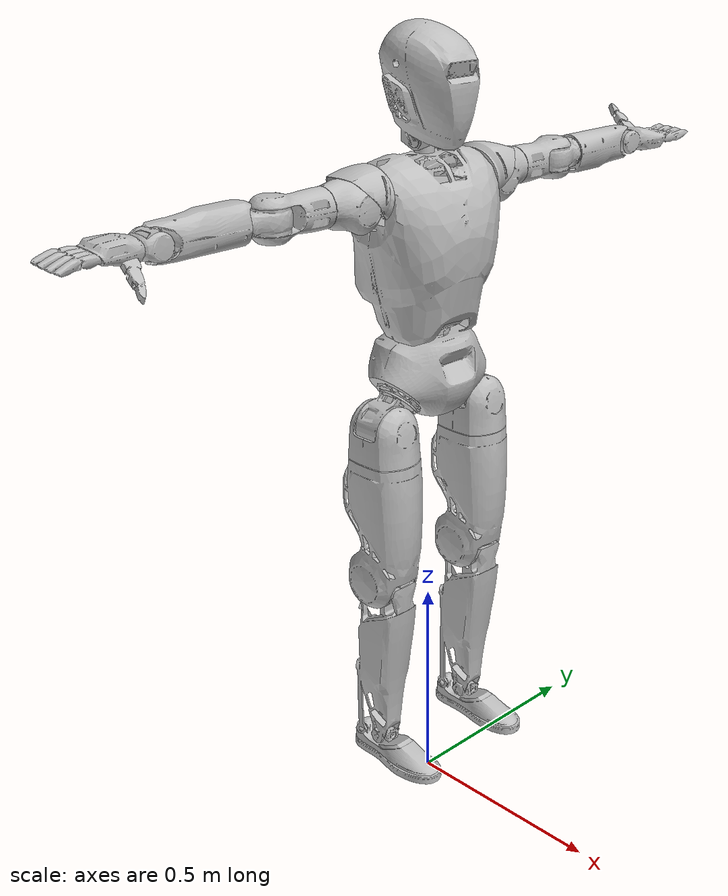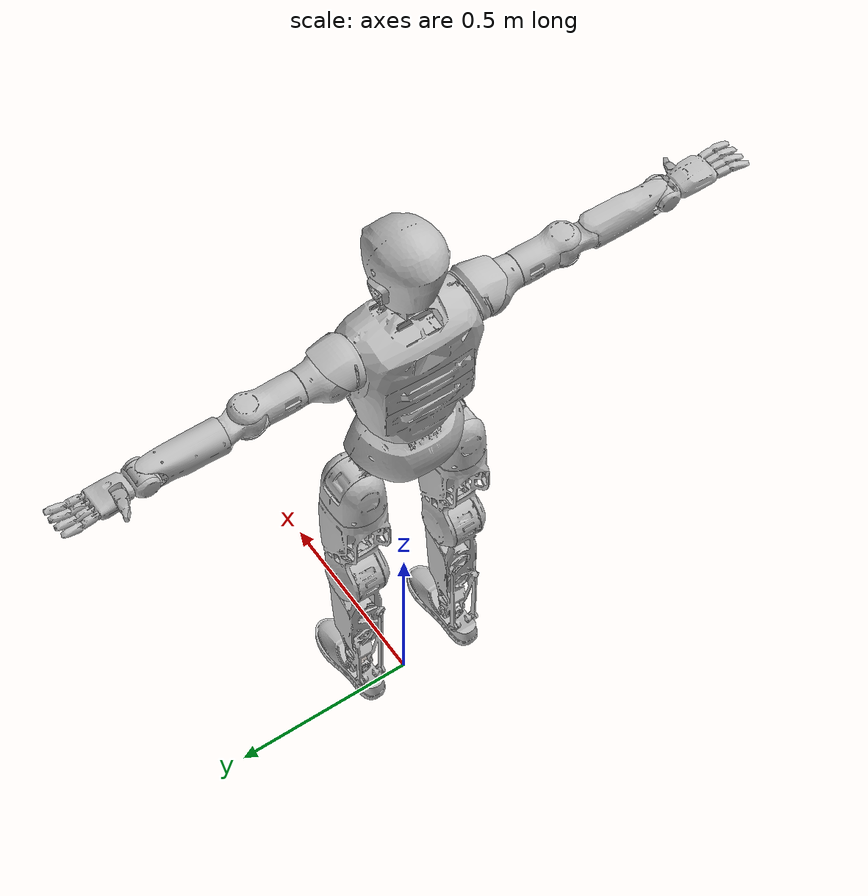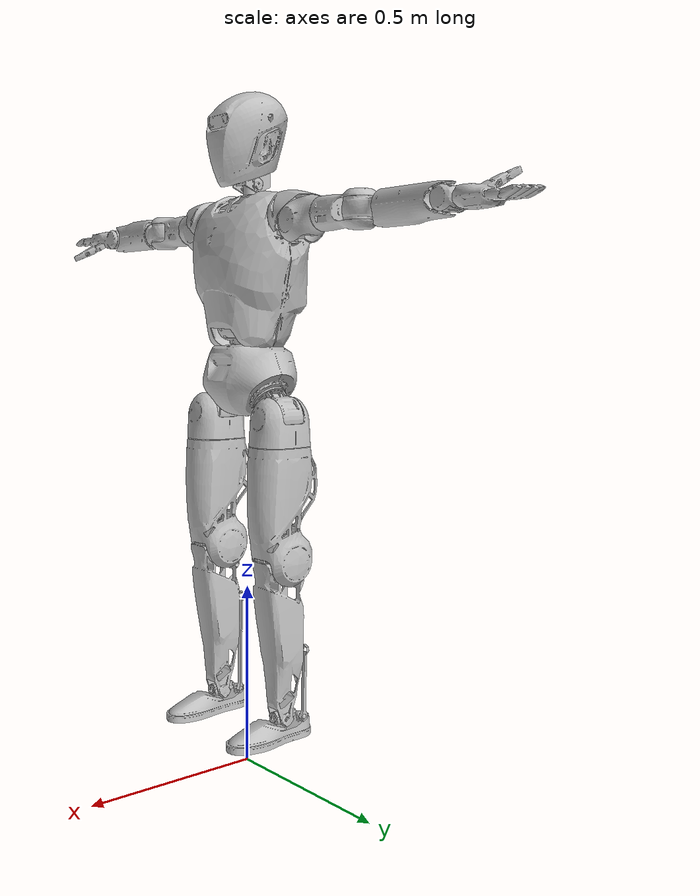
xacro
<?xml version="1.0"?>

<robot xmlns:xacro="http://www.ros.org/wiki/xacro" name="moga">

    <xacro:arg name="robot_type" default="moga" />

  <xacro:include filename="$(find legged_moga_description)/urdf/common/gazebo.xacro" />
  <xacro:include filename="$(find legged_moga_description)/urdf/common/imu.xacro" />
  <xacro:property name="mesh_path" value="file://$(find legged_moga_description)/meshes" />
  <xacro:IMU connected_to="base_link" imu_name="imu_link" xyz="0. 0. 0." rpy="0. 0. 0." />

  <!-- [CAUTION] uncomment when convert to mujoco -->
    <link name="world"/>
    <joint name="world_to_base" type="fixed">
      <parent link="world"/>
      <child link="base_link"/>
      <!-- 把 base_link 固定在离地 1m 高的位置 -->
      <origin xyz="0 0 1"/>
    </joint>

  <link name="base_link">
    <inertial>
      <origin
        xyz="-0.0017221 9.9273E-06 0.078502"
        rpy="0 0 0" />
      <mass
        value="8.80559204" />
      <inertia
        ixx="0.06505901"
        ixy="-0.00001504"
        ixz="0.00007043"
        iyy="0.03392367"
        iyz="-0.00000057"
        izz="0.06060049" />
    </inertial>
    <visual>
      <origin
        xyz="0 0 0"
        rpy="0 0 0" />
      <geometry>
        <mesh
          filename="${mesh_path}/base_link.STL" />
      </geometry>
      <material
        name="">
        <color
          rgba="0.75294 0.75294 0.75294 1" />
      </material>
    </visual>
  </link>
  <link
    name="0waist_yaw_link">
    <inertial>
      <origin
        xyz="0.02077 0.002139 0.044432"
        rpy="0 0 0" />
      <mass
        value="1.35227213" />
      <inertia
        ixx="0.00145099"
        ixy="0.00001293"
        ixz="-0.0002088"
        iyy="0.00155537"
        iyz="0.00001574"
        izz="0.00144129" />
    </inertial>
    <visual>
      <origin
        xyz="0 0 0"
        rpy="0 0 0" />
      <geometry>
        <mesh
          filename="${mesh_path}/waist_yaw.STL" />
      </geometry>
      <material
        name="">
        <color
          rgba="0.75294 0.75294 0.75294 1" />
      </material>
    </visual>
  </link>
  <joint
    name="0waist_yaw"
    type="revolute">
    <origin
      xyz="0.0010247 0 0.16995"
      rpy="0 0 0" />
    <parent
      link="base_link" />
    <child
      link="0waist_yaw_link" />
    <axis
      xyz="0 0 1" />
    <limit
      damping="1.0"
      friction="2.0"
      lower="-3.14"
      upper="3.14"
      effort="90"
      velocity="12.56" />
  </joint>
  <link
    name="waist_pitch_link">
    <inertial>
      <origin
        xyz="-0.0384853936557413 0.0017960963283048 0.164731708770369"
        rpy="0 0 0" />
      <mass
        value="10.28228466" />
      <inertia
        ixx="0.19115274"
        ixy="-0.00014699"
        ixz="-0.00225152"
        iyy="0.11520537"
        iyz="0.00151447"
        izz="0.13908471" />
    </inertial>
    <visual>
      <origin
        xyz="0 0 0"
        rpy="0 0 0" />
      <geometry>
        <mesh
          filename="${mesh_path}/waist_pitch.STL" />
      </geometry>
      <material
        name="">
        <color
          rgba="0.752941176470588 0.752941176470588 0.752941176470588 1" />
      </material>
    </visual>
  </link>
  <joint
    name="waist_pitch"
    type="revolute">
    <origin
      xyz="0.03 0 0.0555"
      rpy="0 0 0" />
    <parent
      link="0waist_yaw_link" />
    <child
      link="waist_pitch_link" />
    <axis
      xyz="0 1 0" />
    <limit
      damping="1.0"
      friction="2.0"
      lower="0"
      upper="1.046"
      effort="90"
      velocity="12.56" />
  </joint>
  <link
    name="1left_shoulder_pitch_link">
    <inertial>
      <origin
        xyz="0.011253 0.034606 0.0013962"
        rpy="0 0 0" />
      <mass
        value="1.24676052" />
      <inertia
        ixx="0.00150509"
        ixy="-0.00005887"
        ixz="0.00007608"
        iyy="0.00147738"
        iyz="0.00009631"
        izz="0.00135553" />
    </inertial>
    <visual>
      <origin
        xyz="0 0 0"
        rpy="0 0 0" />
      <geometry>
        <mesh
          filename="${mesh_path}/left_shoulder_pitch.STL" />
      </geometry>
      <material
        name="">
        <color
          rgba="0.75294 0.75294 0.75294 1" />
      </material>
    </visual>
  </link>
  <joint
    name="1left_shoulder_pitch"
    type="revolute">
    <origin
      xyz="-0.045 0.16306 0.26719"
      rpy="0.13963 0 0" />
    <parent
      link="waist_pitch_link" />
    <child
      link="1left_shoulder_pitch_link" />
    <axis
      xyz="0 1 0" />
    <limit
      damping="1.0"
      friction="2.0"
      lower="-3.14"
      upper="3.14"
      effort="90"
      velocity="3.12" />
  </joint>
  <link
    name="1left_shoulder_roll_link">
    <inertial>
      <origin
        xyz="0.0068529 0.02305 0.0095938"
        rpy="0 0 0" />
      <mass
        value="0.24916820" />
      <inertia
        ixx="0.00054423"
        ixy="0.00004049"
        ixz="0.00001947"
        iyy="0.00059850"
        iyz="-0.00003069"
        izz="0.00069187" />
    </inertial>
    <visual>
      <origin
        xyz="0 0 0"
        rpy="0 0 0" />
      <geometry>
        <mesh
          filename="${mesh_path}/left_shoulder_roll.STL" />
      </geometry>
      <material
        name="">
        <color
          rgba="0.75294 0.75294 0.75294 1" />
      </material>
    </visual>
  </link>
  <joint
    name="1left_shoulder_roll"
    type="revolute">
    <origin
      xyz="0 0.048 -0.015"
      rpy="-0.13963 0 0" />
    <parent
      link="1left_shoulder_pitch_link" />
    <child
      link="1left_shoulder_roll_link" />
    <axis
      xyz="1 0 0" />
    <limit
      damping="1.0"
      friction="2.0"
      lower="-1.57"
      upper="1.04"
      effort="90"
      velocity="3.12" />
  </joint>
  <link
    name="left_shoulder_yaw_link">
    <inertial>
      <origin
        xyz="-0.00050778 0.064908 0.0015998"
        rpy="0 0 0" />
      <mass
        value="0.91467672" />
      <inertia
        ixx="0.00191070"
        ixy="0.00001224"
        ixz="-0.00000012"
        iyy="0.00091729"
        iyz="-0.00004757"
        izz="0.00184017" />
    </inertial>
    <visual>
      <origin
        xyz="0 0 0"
        rpy="0 0 0" />
      <geometry>
        <mesh
          filename="${mesh_path}/left_shoulder_yaw.STL" />
      </geometry>
      <material
        name="">
        <color
          rgba="0.75294 0.75294 0.75294 1" />
      </material>
    </visual>
  </link>
  <joint
    name="left_shoulder_yaw"
    type="revolute">
    <origin
      xyz="0 0.07205 0.01237"
      rpy="0 0 0" />
    <parent
      link="1left_shoulder_roll_link" />
    <child
      link="left_shoulder_yaw_link" />
    <axis
      xyz="0 1 0" />
    <limit
      damping="1.0"
      friction="2.0"
      lower="-3.14"
      upper="3.14"
      effort="48"
      velocity="3.12" />
  </joint>
  <link
    name="1left_elbow_pitch_link">
    <inertial>
      <origin
        xyz="-0.0013804 0.014214 -0.0011072"
        rpy="0 0 0" />
      <mass
        value="0.96823646" />
      <inertia
        ixx="0.00110137"
        ixy="0.00002929"
        ixz="-0.00000334"
        iyy="0.00089963"
        iyz="0.00003570"
        izz="0.00109827" />
    </inertial>
    <visual>
      <origin
        xyz="0 0 0"
        rpy="0 0 0" />
      <geometry>
        <mesh
          filename="${mesh_path}/left_elbow_pitch.STL" />
      </geometry>
      <material
        name="">
        <color
          rgba="0.75294 0.75294 0.75294 1" />
      </material>
    </visual>
  </link>
  <joint
    name="1left_elbow_pitch"
    type="revolute">
    <origin
      xyz="0 0.142 0"
      rpy="0 0 0" />
    <parent
      link="left_shoulder_yaw_link" />
    <child
      link="1left_elbow_pitch_link" />
    <axis
      xyz="0 0 1" />
    <limit
      damping="1.0"
      friction="2.0"
      lower="-2.09"
      upper="0"
      effort="48"
      velocity="3.12" />
  </joint>
  <link
    name="left_elbow_yaw_link">
    <inertial>
      <origin
        xyz="-4.2404E-06 0.090739 -0.0022072"
        rpy="0 0 0" />
      <mass
        value="1.61695316" />
      <inertia
        ixx="0.00444254"
        ixy="0.00000405"
        ixz="0.00000286"
        iyy="0.00112056"
        iyz="0.00022804"
        izz="0.00428917" />
    </inertial>
    <visual>
      <origin
        xyz="0 0 0"
        rpy="0 0 0" />
      <geometry>
        <mesh
          filename="${mesh_path}/left_elbow_yaw.STL" />
      </geometry>
      <material
        name="">
        <color
          rgba="0.75294 0.75294 0.75294 1" />
      </material>
    </visual>
  </link>
  <joint
    name="left_elbow_yaw"
    type="revolute">
    <origin
      xyz="-0.0081851 0.0684 -5.392E-05"
      rpy="0 0 0" />
    <parent
      link="1left_elbow_pitch_link" />
    <child
      link="left_elbow_yaw_link" />
    <axis
      xyz="0 1 0" />
    <limit
      damping="1.0"
      friction="2.0"
      lower="3.14"
      upper="3.14"
      effort="15"
      velocity="3.12" />
  </joint>
  <link
    name="1left_wrist_pitch_link">
    <inertial>
      <origin
        xyz="0.00847041858689116 0.00453400666111203 -0.000647129716278116"
        rpy="0 0 0" />
      <mass
        value="0.68194696" />
      <inertia
        ixx="0.00031510"
        ixy="0.00000000"
        ixz="-0.00000302"
        iyy="0.00038513"
        iyz="-0.00000011"
        izz="0.00035596" />
    </inertial>
    <visual>
      <origin
        xyz="0 0 0"
        rpy="0 0 0" />
      <geometry>
        <mesh
          filename="${mesh_path}/left_wrist_pitch.STL" />
      </geometry>
      <material
        name="">
        <color
          rgba="0.752941176470588 0.752941176470588 0.752941176470588 1" />
      </material>
    </visual>
  </link>
  <joint
    name="1left_wrist_pitch"
    type="revolute">
    <origin
      xyz="0 0.203 5.392E-05"
      rpy="0 0 0" />
    <parent
      link="left_elbow_yaw_link" />
    <child
      link="1left_wrist_pitch_link" />
    <axis
      xyz="0 0 1" />
    <limit
      damping="1.0"
      friction="2.0"
      lower="-0.348"
      upper="0.348"
      effort="15"
      velocity="3.12" />
  </joint>
  <link
    name="left_wrist_roll_link">
    <inertial>
      <origin
        xyz="-0.0026765098743331 0.0932230814686578 -0.00310005917547751"
        rpy="0 0 0" />
      <mass
        value="0.70000000" />
      <inertia
        ixx="0.00164249"
        ixy="0.00007715"
        ixz="0.00021137"
        iyy="0.00089043"
        iyz="-0.00010543"
        izz="0.00217172" />
    </inertial>
    <visual>
      <origin
        xyz="0 0 0"
        rpy="0 0 0" />
      <geometry>
        <mesh
          filename="${mesh_path}/left_wrist_roll.STL" />
      </geometry>
      <material
        name="">
        <color
          rgba="0.752941176470588 0.752941176470588 0.752941176470588 1" />
      </material>
    </visual>
  </link>
  <joint
    name="left_wrist_roll"
    type="revolute">
    <origin
      xyz="0.0081861 0.005 0.00024608"
      rpy="0 0 0" />
    <parent
      link="1left_wrist_pitch_link" />
    <child
      link="left_wrist_roll_link" />
    <axis
      xyz="1 0 0" />
    <limit
      damping="1.0"
      friction="2.0"
      lower="-0.52"
      upper="0.52"
      effort="15"
      velocity="3.12" />
  </joint>
  <link
    name="1right_shoulder_pitch_link">
    <inertial>
      <origin
        xyz="0.0112521341386398 -0.0345906481596432 0.00140406395538412"
        rpy="0 0 0" />
      <mass
        value="1.24685052" />
      <inertia
        ixx="0.00150547"
        ixy="0.00005893"
        ixz="0.00007617"
        iyy="0.00147760"
        iyz="-0.00009651"
        izz="0.00135577" />
    </inertial>
    <visual>
      <origin
        xyz="0 0 0"
        rpy="0 0 0" />
      <geometry>
        <mesh
          filename="${mesh_path}/right_shoulder_pitch.STL" />
      </geometry>
      <material
        name="">
        <color
          rgba="0.752941176470588 0.752941176470588 0.752941176470588 1" />
      </material>
    </visual>
  </link>
  <joint
    name="1right_shoulder_pitch"
    type="revolute">
    <origin
      xyz="-0.045 -0.16306 0.26719"
      rpy="-0.13963 0 0" />
    <parent
      link="waist_pitch_link" />
    <child
      link="1right_shoulder_pitch_link" />
    <axis
      xyz="0 1 0" />
    <limit
      damping="1.0"
      friction="2.0"
      lower="-3.14"
      upper="3.14"
      effort="90"
      velocity="3.12" />
  </joint>
  <link
    name="1right_shoulder_roll_link">
    <inertial>
      <origin
        xyz="0.00684462181795377 -0.023042827171319 0.00959240613331935"
        rpy="0 0 0" />
      <mass
        value="0.24917773" />
      <inertia
        ixx="0.00055212"
        ixy="-0.00003627"
        ixz="0.00001721"
        iyy="0.00060479"
        iyz="0.00003340"
        izz="0.00070132" />
    </inertial>
    <visual>
      <origin
        xyz="0 0 0"
        rpy="0 0 0" />
      <geometry>
        <mesh
          filename="${mesh_path}/right_shoulder_roll.STL" />
      </geometry>
      <material
        name="">
        <color
          rgba="0.752941176470588 0.752941176470588 0.752941176470588 1" />
      </material>
    </visual>
  </link>
  <joint
    name="1right_shoulder_roll"
    type="revolute">
    <origin
      xyz="0 -0.048 -0.015"
      rpy="0.13963 0 0" />
    <parent
      link="1right_shoulder_pitch_link" />
    <child
      link="1right_shoulder_roll_link" />
    <axis
      xyz="1 0 0" />
    <limit
      damping="1.0"
      friction="2.0"
      lower="-1.04"
      upper="1.57"
      effort="90"
      velocity="3.12" />
  </joint>
  <link
    name="right_shoulder_yaw_link">
    <inertial>
      <origin
        xyz="-0.000506858484631955 -0.0645515552123688 0.00168134263284647"
        rpy="0 0 0" />
      <mass
        value="0.91457840" />
      <inertia
        ixx="0.00189816"
        ixy="-0.00001244"
        ixz="-0.00000038"
        iyy="0.00091718"
        iyz="0.00005251"
        izz="0.00182921" />
    </inertial>
    <visual>
      <origin
        xyz="0 0 0"
        rpy="0 0 0" />
      <geometry>
        <mesh
          filename="${mesh_path}/right_shoulder_yaw.STL" />
      </geometry>
      <material
        name="">
        <color
          rgba="0.752941176470588 0.752941176470588 0.752941176470588 1" />
      </material>
    </visual>
  </link>
  <joint
    name="right_shoulder_yaw"
    type="revolute">
    <origin
      xyz="0 -0.07205 0.01237"
      rpy="0 0 0" />
    <parent
      link="1right_shoulder_roll_link" />
    <child
      link="right_shoulder_yaw_link" />
    <axis
      xyz="0 1 0" />
    <limit
      damping="1.0"
      friction="2.0"
      lower="-3.14"
      upper="3.14"
      effort="48"
      velocity="3.12" />
  </joint>
  <link
    name="1right_elbow_pitch_link">
    <inertial>
      <origin
        xyz="-0.00147698397475442 -0.0138263638011724 -0.000807664369872563"
        rpy="0 0 0" />
      <mass
        value="0.97128107" />
      <inertia
        ixx="0.00110702"
        ixy="-0.00002804"
        ixz="-0.00000244"
        iyy="0.00090197"
        iyz="-0.00003835"
        izz="0.00110252" />
    </inertial>
    <visual>
      <origin
        xyz="0 0 0"
        rpy="0 0 0" />
      <geometry>
        <mesh
          filename="${mesh_path}/right_elbow_pitch.STL" />
      </geometry>
      <material
        name="">
        <color
          rgba="0.752941176470588 0.752941176470588 0.752941176470588 1" />
      </material>
    </visual>
  </link>
  <joint
    name="1right_elbow_pitch"
    type="revolute">
    <origin
      xyz="0 -0.142 0"
      rpy="0 0 0" />
    <parent
      link="right_shoulder_yaw_link" />
    <child
      link="1right_elbow_pitch_link" />
    <axis
      xyz="0 0 1" />
    <limit
      damping="1.0"
      friction="2.0"
      lower="0"
      upper="2.09"
      effort="48"
      velocity="3.12" />
  </joint>
  <link
    name="right_elbow_yaw_link">
    <inertial>
      <origin
        xyz="-8.33407370061032E-06 -0.0907632773291066 -0.00221092912571186"
        rpy="0 0 0" />
      <mass
        value="1.61873767" />
      <inertia
        ixx="0.00446047"
        ixy="-0.00000054"
        ixz="0.00000211"
        iyy="0.00112527"
        iyz="-0.00022522"
        izz="0.00430811" />
    </inertial>
    <visual>
      <origin
        xyz="0 0 0"
        rpy="0 0 0" />
      <geometry>
        <mesh
          filename="${mesh_path}/right_elbow_yaw.STL" />
      </geometry>
      <material
        name="">
        <color
          rgba="0.752941176470588 0.752941176470588 0.752941176470588 1" />
      </material>
    </visual>
  </link>
  <joint
    name="right_elbow_yaw"
    type="revolute">
    <origin
      xyz="-0.0081851 -0.0684 -5.3926E-05"
      rpy="0 0 0" />
    <parent
      link="1right_elbow_pitch_link" />
    <child
      link="right_elbow_yaw_link" />
    <axis
      xyz="0 1 0" />
    <limit
      damping="1.0"
      friction="2.0"
      lower="-3.14"
      upper="3.14"
      effort="15"
      velocity="3.12" />
  </joint>
  <link
    name="1right_wrist_pitch_link">
    <inertial>
      <origin
        xyz="0.00875047888413561 -0.00468416782029091 -0.000970628197680568"
        rpy="0 0 0" />
      <mass
        value="0.67826839" />
      <inertia
        ixx="0.00031112"
        ixy="-0.00000022"
        ixz="-0.00000303"
        iyy="0.00038076"
        iyz="0.00000011"
        izz="0.00035533" />
    </inertial>
    <visual>
      <origin
        xyz="0 0 0"
        rpy="0 0 0" />
      <geometry>
        <mesh
          filename="${mesh_path}/right_wrist_pitch.STL" />
      </geometry>
      <material
        name="">
        <color
          rgba="0.752941176470588 0.752941176470588 0.752941176470588 1" />
      </material>
    </visual>
  </link>
  <joint
    name="1right_wrist_pitch"
    type="revolute">
    <origin
      xyz="0 -0.203 5.3926E-05"
      rpy="0 0 0" />
    <parent
      link="right_elbow_yaw_link" />
    <child
      link="1right_wrist_pitch_link" />
    <axis
      xyz="0 0 1" />
    <limit
      damping="1.0"
      friction="2.0"
      lower="-0.348"
      upper="0.348"
      effort="15"
      velocity="3.12" />
  </joint>
  <link
    name="right_wrist_roll_link">
    <inertial>
      <origin
        xyz="-0.0026743901109887 -0.0932300829591381 -0.00310237469926988"
        rpy="0 0 0" />
      <mass
        value="0.70000000" />
      <inertia
        ixx="0.00202508"
        ixy="-0.00007043"
        ixz="0.00018728"
        iyy="0.00086803"
        iyz="0.00007448"
        izz="0.00254029" />
    </inertial>
    <visual>
      <origin
        xyz="0 0 0"
        rpy="0 0 0" />
      <geometry>
        <mesh
          filename="${mesh_path}/right_wrist_roll.STL" />
      </geometry>
      <material
        name="">
        <color
          rgba="0.752941176470588 0.752941176470588 0.752941176470588 1" />
      </material>
    </visual>
  </link>
  <joint
    name="right_wrist_roll"
    type="revolute">
    <origin
      xyz="0.0081861 -0.005 -5.3126E-05"
      rpy="0 0 0" />
    <parent
      link="1right_wrist_pitch_link" />
    <child
      link="right_wrist_roll_link" />
    <axis
      xyz="1 0 0" />
    <limit
      damping="1.0"
      friction="2.0"
      lower="-0.52"
      upper="0.52"
      effort="15"
      velocity="3.12" />
  </joint>
  <link
    name="head_yaw_link">
    <inertial>
      <origin
        xyz="-1.11251816561214E-08 2.04794399136492E-09 0.0286489164729257"
        rpy="0 0 0" />
      <mass
        value="0.40000000" />
      <inertia
        ixx="0.00015876"
        ixy="0.00000029"
        ixz="-0.00000001"
        iyy="0.00014962"
        iyz="0.00000000"
        izz="0.00009530" />
    </inertial>
    <visual>
      <origin
        xyz="0 0 0"
        rpy="0 0 0" />
      <geometry>
        <mesh
          filename="${mesh_path}/head_yaw.STL" />
      </geometry>
      <material
        name="">
        <color
          rgba="0.752941176470588 0.752941176470588 0.752941176470588 1" />
      </material>
    </visual>
  </link>
  <joint
    name="head_yaw"
    type="revolute">
    <origin
      xyz="-0.044993 -0.00045296 0.3395"
      rpy="0 0 0" />
    <parent
      link="waist_pitch_link" />
    <child
      link="head_yaw_link" />
    <axis
      xyz="0 0 1" />
    <limit
      damping="1.0"
      friction="2.0"
      lower="-1.04"
      upper="1.04"
      effort="5"
      velocity="3.12" />
  </joint>
  <link
    name="head_pitch_link">
    <inertial>
      <origin
        xyz="-0.00040328068000511 -0.000228807560410491 0.098250037733404"
        rpy="0 0 0" />
      <mass
        value="2.50000000" />
      <inertia
        ixx="0.01150944"
        ixy="-0.00007772"
        ixz="-0.00024645"
        iyy="0.01344915"
        iyz="-0.00005617"
        izz="0.01041923" />
    </inertial>
    <visual>
      <origin
        xyz="0 0 0"
        rpy="0 0 0" />
      <geometry>
        <mesh
          filename="${mesh_path}/head_pitch.STL" />
      </geometry>
      <material
        name="">
        <color
          rgba="0.752941176470588 0.752941176470588 0.752941176470588 1" />
      </material>
    </visual>
  </link>
  <joint
    name="head_pitch"
    type="revolute">
    <origin
      xyz="0 0 0.032"
      rpy="0 0 0" />
    <parent
      link="head_yaw_link" />
    <child
      link="head_pitch_link" />
    <axis
      xyz="0 1 0" />
    <limit
      damping="1.0"
      friction="2.0"
      lower="0"
      upper="0.523"
      effort="2.4"
      velocity="3.12" />
  </joint>
  <link
    name="left_hip_pitch_link">
    <inertial>
      <origin
        xyz="0.000953472951460345 0.0567455295656464 4.80867864948303E-05"
        rpy="0 0 0" />
      <mass
        value="1.82518001" />
      <inertia
        ixx="0.00312969"
        ixy="-0.00008870"
        ixz="-0.00000264"
        iyy="0.00285304"
        iyz="0.00000042"
        izz="0.00311486" />
    </inertial>
    <visual>
      <origin
        xyz="0 0 0"
        rpy="0 0 0" />
      <geometry>
        <mesh
          filename="${mesh_path}/left_hip_pitch.STL" />
      </geometry>
      <material
        name="">
        <color
          rgba="0.752941176470588 0.752941176470588 0.752941176470588 1" />
      </material>
    </visual>
  </link>
  <joint
    name="left_hip_pitch"
    type="revolute">
    <origin
      xyz="0.0010247 0.096429 0.027623"
      rpy="-0.7854 0 0" />
    <parent
      link="base_link" />
    <child
      link="left_hip_pitch_link" />
    <axis
      xyz="0 1 0" />
    <limit
      damping="1.0"
      friction="2.0"
      lower="-3.14"
      upper="3.14"
      effort="450"
      velocity="12.56" />
  </joint>
  <link
    name="left_hip_roll_link">
    <inertial>
      <origin
        xyz="-0.00213526947509337 3.06463661947642E-07 -0.0290152254653168"
        rpy="0 0 0" />
      <mass
        value="0.880530480217801" />
      <inertia
        ixx="0.00232319"
        ixy="0.00000000"
        ixz="0.00003524"
        iyy="0.00296419"
        iyz="0.00000004"
        izz="0.00337624" />
    </inertial>
    <visual>
      <origin
        xyz="0 0 0"
        rpy="0 0 0" />
      <geometry>
        <mesh
          filename="${mesh_path}/left_hip_roll.STL" />
      </geometry>
      <material
        name="">
        <color
          rgba="0.752941176470588 0.752941176470588 0.752941176470588 1" />
      </material>
    </visual>
  </link>
  <joint
    name="left_hip_roll"
    type="revolute">
    <origin
      xyz="0 0.067622 0"
      rpy="0.7854 0 0" />
    <parent
      link="left_hip_pitch_link" />
    <child
      link="left_hip_roll_link" />
    <axis
      xyz="1 0 0" />
    <limit
      damping="1.0"
      friction="2.0"
      lower="-0.697"
      upper="2.267"
      effort="195"
      velocity="11.51" />
  </joint>
  <link
    name="left_hip_yaw_link">
    <inertial>
      <origin
        xyz="0.00577813494644455 0.000465316699057416 -0.153060479446203"
        rpy="0 0 0" />
      <mass
        value="3.95426263" />
      <inertia
        ixx="0.05148497"
        ixy="0.00002749"
        ixz="0.00132867"
        iyy="0.05199675"
        iyz="0.00019401"
        izz="0.01283185" />
    </inertial>
    <visual>
      <origin
        xyz="0 0 0"
        rpy="0 0 0" />
      <geometry>
        <mesh
          filename="${mesh_path}/left_hip_yaw.STL" />
      </geometry>
      <material
        name="">
        <color
          rgba="0.752941176470588 0.752941176470588 0.752941176470588 1" />
      </material>
    </visual>
  </link>
  <joint
    name="left_hip_yaw"
    type="revolute">
    <origin
      xyz="0.0018703 0 -0.074158"
      rpy="0 0 0" />
    <parent
      link="left_hip_roll_link" />
    <child
      link="left_hip_yaw_link" />
    <axis
      xyz="0 0 1" />
    <limit
      damping="1.0"
      friction="2.0"
      lower="-3.14"
      upper="3.14"
      effort="195"
      velocity="11.51" />
  </joint>
  <link
    name="left_knee_pitch_link">
    <inertial>
      <origin
        xyz="0.00390324980678863 -0.000270854412135202 -0.157791912336165"
        rpy="0 0 0" />
      <mass
        value="6.59571899" />
      <inertia
        ixx="0.10730579"
        ixy="-0.00003258"
        ixz="-0.00046619"
        iyy="0.10936708"
        iyz="0.00196482"
        izz="0.01215190" />
    </inertial>
    <visual>
      <origin
        xyz="0 0 0"
        rpy="0 0 0" />
      <geometry>
        <mesh
          filename="${mesh_path}/left_knee_pitch.STL" />
      </geometry>
      <material
        name="">
        <color
          rgba="0.752941176470588 0.752941176470588 0.752941176470588 1" />
      </material>
    </visual>
  </link>
  <joint
    name="left_knee_pitch"
    type="revolute">
    <origin
      xyz="-0.009965 0 -0.30584"
      rpy="0 0 0.00011549" />
    <parent
      link="left_hip_yaw_link" />
    <child
      link="left_knee_pitch_link" />
    <axis
      xyz="0 1 0" />
    <limit
      damping="1.0"
      friction="2.0"
      lower="-0.087"
      upper="2.267"
      effort="450"
      velocity="12.56" />
  </joint>
  <link
    name="left_ankle_pitch_link">
    <inertial>
      <origin
        xyz="-2.2892518658198E-06 -2.84522308491297E-09 2.93525503902714E-08"
        rpy="0 0 0" />
      <mass
        value="0.0512288649062511" />
      <inertia
        ixx="0.00000658"
        ixy="0.00000000"
        ixz="0.00000000"
        iyy="0.00000670"
        iyz="0.00000000"
        izz="0.00000917" />
    </inertial>
    <visual>
      <origin
        xyz="0 0 0"
        rpy="0 0 0" />
      <geometry>
        <mesh
          filename="${mesh_path}/left_ankle_pitch.STL" />
      </geometry>
      <material
        name="">
        <color
          rgba="0.686274509803922 0.658823529411765 0.63921568627451 1" />
      </material>
    </visual>
  </link>
  <joint
    name="left_ankle_pitch"
    type="revolute">
    <origin
      xyz="0.0014615 0 -0.43469"
      rpy="0 0 0" />
    <parent
      link="left_knee_pitch_link" />
    <child
      link="left_ankle_pitch_link" />
    <axis
      xyz="0 1 0" />
    <limit
      upper="0.523"
      lower="-0.87"
      effort="96"
      velocity="12.56" />
  </joint>
  <link
    name="left_ankle_roll_link">
    <inertial>
      <origin
        xyz="0.030758703687536 0.00059687504364378 -0.0253089859536298"
        rpy="0 0 0" />
      <mass
        value="1.87142690120786" />
      <inertia
        ixx="0.00619617"
        ixy="-0.00011713"
        ixz="0.00243803"
        iyy="0.01486650"
        iyz="0.00027589"
        izz="0.01053870" />
    </inertial>
    <visual>
      <origin
        xyz="0 0 0"
        rpy="0 0 0" />
      <geometry>
        <mesh
          filename="${mesh_path}/left_ankle_roll.STL" />
      </geometry>
      <material
        name="">
        <color
          rgba="0.752941176470588 0.752941176470588 0.752941176470588 1" />
      </material>
    </visual>
  </link>
  <joint
    name="left_ankle_roll"
    type="revolute">
    <origin
      xyz="0 0 0"
      rpy="0 0 0" />
    <parent
      link="left_ankle_pitch_link" />
    <child
      link="left_ankle_roll_link" />
    <axis
      xyz="1 0 0" />
    <limit
      damping="1.0"
      friction="2.0"
      lower="-0.348"
      upper="0.348"
      effort="96"
      velocity="12.56" />
  </joint>
  <link
    name="right_hip_pitch_link">
    <inertial>
      <origin
        xyz="0.000953464436361407 -0.0567455355500224 4.80848299709014E-05"
        rpy="0 0 0" />
      <mass
        value="1.82518002" />
      <inertia
        ixx="0.00312969"
        ixy="0.00008870"
        ixz="-0.00000264"
        iyy="0.00285304"
        iyz="-0.00000042"
        izz="0.00311486" />
    </inertial>
    <visual>
      <origin
        xyz="0 0 0"
        rpy="0 0 0" />
      <geometry>
        <mesh
          filename="${mesh_path}/right_hip_pitch.STL" />
      </geometry>
      <material
        name="">
        <color
          rgba="0.752941176470588 0.752941176470588 0.752941176470588 1" />
      </material>
    </visual>
  </link>
  <joint
    name="right_hip_pitch"
    type="revolute">
    <origin
      xyz="0.0010247 -0.096429 0.027623"
      rpy="0.7854 0 0" />
    <parent
      link="base_link" />
    <child
      link="right_hip_pitch_link" />
    <axis
      xyz="0 1 0" />
    <limit
      damping="1.0"
      friction="2.0"
      lower="-3.14"
      upper="3.14"
      effort="450"
      velocity="12.56" />
  </joint>
  <link
    name="right_hip_roll_link">
    <inertial>
      <origin
        xyz="-0.00213537343530021 4.14663841652452E-07 -0.029014188648969"
        rpy="0 0 0" />
      <mass
        value="0.880546804245556" />
      <inertia
        ixx="0.00232319"
        ixy="0.00000001"
        ixz="0.00003525"
        iyy="0.00296416"
        iyz="0.00000003"
        izz="0.00337622" />
    </inertial>
    <visual>
      <origin
        xyz="0 0 0"
        rpy="0 0 0" />
      <geometry>
        <mesh
          filename="${mesh_path}/right_hip_roll.STL" />
      </geometry>
      <material
        name="">
        <color
          rgba="0.752941176470588 0.752941176470588 0.752941176470588 1" />
      </material>
    </visual>
  </link>
  <joint
    name="right_hip_roll"
    type="revolute">
    <origin
      xyz="0 -0.067622 0"
      rpy="-0.7854 0 0" />
    <parent
      link="right_hip_pitch_link" />
    <child
      link="right_hip_roll_link" />
    <axis
      xyz="1 0 0" />
    <limit
      upper="0.697"
      lower="-2.267"
      effort="195"
      velocity="11.51" />
  </joint>
  <link
    name="right_hip_yaw_link">
    <inertial>
      <origin
        xyz="0.00577266180781425 -0.000472879882793709 -0.153068513808269"
        rpy="0 0 0" />
      <mass
        value="3.95440660" />
      <inertia
        ixx="0.05149004"
        ixy="-0.00002798"
        ixz="0.00132532"
        iyy="0.05200232"
        iyz="-0.00019645"
        izz="0.01283307" />
    </inertial>
    <visual>
      <origin
        xyz="0 0 0"
        rpy="0 0 0" />
      <geometry>
        <mesh
          filename="${mesh_path}/right_hip_yaw.STL" />
      </geometry>
      <material
        name="">
        <color
          rgba="0.752941176470588 0.752941176470588 0.752941176470588 1" />
      </material>
    </visual>
  </link>
  <joint
    name="right_hip_yaw"
    type="revolute">
    <origin
      xyz="0.0018703 0 -0.074158"
      rpy="0 0 0" />
    <parent
      link="right_hip_roll_link" />
    <child
      link="right_hip_yaw_link" />
    <axis
      xyz="0 0 1" />
    <limit
      damping="1.0"
      friction="2.0"
      lower="-3.14"
      upper="3.14"
      effort="96"
      velocity="12.56" />
  </joint>
  <link
    name="right_knee_pitch_link">
    <inertial>
      <origin
        xyz="0.00391924967939787 0.000269788814078381 -0.157795637598538"
        rpy="0 0 0" />
      <mass
        value="6.59575179" />
      <inertia
        ixx="0.10699135"
        ixy="0.00003205"
        ixz="-0.00144109"
        iyy="0.10929003"
        iyz="-0.00197257"
        izz="0.01209759" />
    </inertial>
    <visual>
      <origin
        xyz="0 0 0"
        rpy="0 0 0" />
      <geometry>
        <mesh
          filename="${mesh_path}/right_knee_pitch.STL" />
      </geometry>
      <material
        name="">
        <color
          rgba="0.752941176470588 0.752941176470588 0.752941176470588 1" />
      </material>
    </visual>
  </link>
  <joint
    name="right_knee_pitch"
    type="revolute">
    <origin
      xyz="-0.0099604 0 -0.30584"
      rpy="0 0 0" />
    <parent
      link="right_hip_yaw_link" />
    <child
      link="right_knee_pitch_link" />
    <axis
      xyz="0 1 0" />
    <limit
      damping="1.0"
      friction="2.0"
      lower="-0.087"
      upper="2.267"
      effort="450"
      velocity="12.56" />
  </joint>
  <link
    name="right_ankle_pitch_link">
    <inertial>
      <origin
        xyz="-1.59129985240897E-07 5.15849671312019E-09 3.97430611753791E-08"
        rpy="0 0 0" />
      <mass
        value="0.0512327452464081" />
      <inertia
        ixx="0.00000658"
        ixy="0.00000000"
        ixz="0.00000000"
        iyy="0.00000670"
        iyz="0.00000000"
        izz="0.00000917" />
    </inertial>
    <visual>
      <origin
        xyz="0 0 0"
        rpy="0 0 0" />
      <geometry>
        <mesh
          filename="${mesh_path}/right_ankle_pitch.STL" />
      </geometry>
      <material
        name="">
        <color
          rgba="1 1 1 1" />
      </material>
    </visual>
  </link>
  <joint
    name="right_ankle_pitch"
    type="revolute">
    <origin
      xyz="0.0014547 0 -0.43469"
      rpy="0 0 0" />
    <parent
      link="right_knee_pitch_link" />
    <child
      link="right_ankle_pitch_link" />
    <axis
      xyz="0 1 0" />
    <limit
      upper="0.523"
      lower="-0.87"
      effort="96"
      velocity="12.56" />
  </joint>
  <link
    name="right_ankle_roll_link">
    <inertial>
      <origin
        xyz="0.030867628467181 -0.000617207669286995 -0.025306814425915"
        rpy="0 0 0" />
      <mass
        value="1.87934875090907" />
      <inertia
        ixx="0.00619901"
        ixy="0.00011866"
        ixz="0.00243055"
        iyy="0.01491229"
        iyz="-0.00027631"
        izz="0.01059010" />
    </inertial>
    <visual>
      <origin
        xyz="0 0 0"
        rpy="0 0 0" />
      <geometry>
        <mesh
          filename="${mesh_path}/right_ankle_roll.STL" />
      </geometry>
      <material
        name="">
        <color
          rgba="0.752941176470588 0.752941176470588 0.752941176470588 1" />
      </material>
    </visual>
  </link>
  <joint
    name="right_ankle_roll"
    type="revolute">
    <origin
      xyz="0 0 0"
      rpy="0 0 0" />
    <parent
      link="right_ankle_pitch_link" />
    <child
      link="right_ankle_roll_link" />
    <axis
      xyz="1 0 0" />
    <limit
      damping="1.0"
      friction="2.0"
      lower="-0.348"
      upper="0.348"
      effort="96"
      velocity="12.56" />
  </joint>

  <!-- ~~~~~~~~~~~~~~~~~~~~~~~~~~~~~~~Gazebo 配置~~~~~~~~~~~~~~~~~~~~~~~~~~~~~~~ -->
  <gazebo reference="base_link">
    <mu1>0.6</mu1>
    <mu2>0.6</mu2>
    <self_collide>0</self_collide>
    <material>Gazebo/Orange</material>
  </gazebo>

  <gazebo reference="0waist_yaw">
    <mu1>0.2</mu1>
    <mu2>0.2</mu2>
    <material>Gazebo/Grey</material>
  </gazebo>

  <gazebo reference="waist_pitch">
    <mu1>0.2</mu1>
    <mu2>0.2</mu2>
    <material>Gazebo/Grey</material>
  </gazebo>

  <!-- Left Arm Gazebo -->
  <gazebo reference="1left_shoulder_pitch">
    <mu1>0.2</mu1>
    <mu2>0.2</mu2>
    <material>Gazebo/Red</material>
  </gazebo>

  <gazebo reference="1left_shoulder_roll">
    <mu1>0.2</mu1>
    <mu2>0.2</mu2>
    <material>Gazebo/Red</material>
  </gazebo>

  <gazebo reference="left_shoulder_yaw">
    <mu1>0.2</mu1>
    <mu2>0.2</mu2>
    <material>Gazebo/Red</material>
  </gazebo>

  <gazebo reference="1left_elbow_pitch">
    <mu1>0.2</mu1>
    <mu2>0.2</mu2>
    <material>Gazebo/Red</material>
  </gazebo>

  <gazebo reference="left_elbow_yaw">
    <mu1>0.2</mu1>
    <mu2>0.2</mu2>
    <material>Gazebo/Red</material>
  </gazebo>

  <gazebo reference="1left_wrist_pitch">
    <mu1>0.2</mu1>
    <mu2>0.2</mu2>
    <material>Gazebo/Red</material>
  </gazebo>

  <gazebo reference="left_wrist_roll">
    <mu1>0.2</mu1>
    <mu2>0.2</mu2>
    <material>Gazebo/Red</material>
  </gazebo>

  <!-- Right Arm Gazebo -->
  <gazebo reference="1right_shoulder_pitch">
    <mu1>0.2</mu1>
    <mu2>0.2</mu2>
    <material>Gazebo/Blue</material>
  </gazebo>

  <gazebo reference="1right_shoulder_roll">
    <mu1>0.2</mu1>
    <mu2>0.2</mu2>
    <material>Gazebo/Blue</material>
  </gazebo>

  <gazebo reference="right_shoulder_yaw">
    <mu1>0.2</mu1>
    <mu2>0.2</mu2>
    <material>Gazebo/Blue</material>
  </gazebo>

  <gazebo reference="1right_elbow_pitch">
    <mu1>0.2</mu1>
    <mu2>0.2</mu2>
    <material>Gazebo/Blue</material>
  </gazebo>

  <gazebo reference="right_elbow_yaw">
    <mu1>0.2</mu1>
    <mu2>0.2</mu2>
    <material>Gazebo/Blue</material>
  </gazebo>

  <gazebo reference="1right_wrist_pitch">
    <mu1>0.2</mu1>
    <mu2>0.2</mu2>
    <material>Gazebo/Blue</material>
  </gazebo>

  <gazebo reference="right_wrist_roll">
    <mu1>0.2</mu1>
    <mu2>0.2</mu2>
    <material>Gazebo/Blue</material>
  </gazebo>

  <!-- Head Gazebo -->
  <gazebo reference="head_yaw">
    <mu1>0.2</mu1>
    <mu2>0.2</mu2>
    <material>Gazebo/DarkGrey</material>
  </gazebo>

  <gazebo reference="head_pitch">
    <mu1>0.2</mu1>
    <mu2>0.2</mu2>
    <material>Gazebo/DarkGrey</material>
  </gazebo>

  <!-- Left Leg Gazebo -->
  <gazebo reference="left_hip_pitch">
    <mu1>0.2</mu1>
    <mu2>0.2</mu2>
    <material>Gazebo/RedBright</material>
  </gazebo>

  <gazebo reference="left_hip_roll">
    <mu1>0.2</mu1>
    <mu2>0.2</mu2>
    <material>Gazebo/Yellow</material>
  </gazebo>

  <gazebo reference="left_hip_yaw">
    <mu1>0.2</mu1>
    <mu2>0.2</mu2>
    <material>Gazebo/Green</material>
  </gazebo>

  <gazebo reference="left_knee_pitch">
    <mu1>0.2</mu1>
    <mu2>0.2</mu2>
    <material>Gazebo/Blue</material>
  </gazebo>

  <gazebo reference="left_ankle_pitch">
    <mu1>0.2</mu1>
    <mu2>0.2</mu2>
    <material>Gazebo/Purple</material>
  </gazebo>

  <gazebo reference="left_ankle_roll">
    <mu1>1.0</mu1>
    <mu2>1.0</mu2>
    <self_collide>0</self_collide>
    <material>Gazebo/Purple</material>
    <kp value="1000000.0" />
    <kd value="100.0" />
  </gazebo>

  <!-- Right Leg Gazebo -->
  <gazebo reference="right_hip_pitch">
    <mu1>0.2</mu1>
    <mu2>0.2</mu2>
    <material>Gazebo/RedBright</material>
  </gazebo>

  <gazebo reference="right_hip_roll">
    <mu1>0.2</mu1>
    <mu2>0.2</mu2>
    <material>Gazebo/Yellow</material>
  </gazebo>

  <gazebo reference="right_hip_yaw">
    <mu1>0.2</mu1>
    <mu2>0.2</mu2>
    <material>Gazebo/Green</material>
  </gazebo>

  <gazebo reference="right_knee_pitch">
    <mu1>0.2</mu1>
    <mu2>0.2</mu2>
    <material>Gazebo/Blue</material>
  </gazebo>

  <gazebo reference="right_ankle_pitch">
    <mu1>0.2</mu1>
    <mu2>0.2</mu2>
    <material>Gazebo/Purple</material>
  </gazebo>

  <gazebo reference="right_ankle_roll">
    <mu1>1.0</mu1>
    <mu2>1.0</mu2>
    <self_collide>0</self_collide>
    <material>Gazebo/Purple</material>
    <kp value="1000000.0" />
    <kd value="100.0" />
  </gazebo>

  <!-- ~~~~~~~~~~~~~~~~~~~~~~~~~~~~~~~ros2_control 配置~~~~~~~~~~~~~~~~~~~~~~~~~~~~~~~ -->
  <ros2_control name="moga_control" type="system">
    <hardware>
            <plugin>gazebo_ros2_control/GazeboSystem</plugin>
    </hardware>

    <!-- Left Leg Joints -->
    <joint name="left_hip_pitch">
      <command_interface name="effort" />
      <state_interface name="position" />
      <state_interface name="velocity" />
      <state_interface name="effort" />
    </joint>

    <joint name="left_hip_roll">
      <command_interface name="effort" />
      <state_interface name="position" />
      <state_interface name="velocity" />
      <state_interface name="effort" />
    </joint>

    <joint name="left_hip_yaw">
      <command_interface name="effort" />
      <state_interface name="position" />
      <state_interface name="velocity" />
      <state_interface name="effort" />
    </joint>

    <joint name="left_knee_pitch">
      <command_interface name="effort" />
      <state_interface name="position" />
      <state_interface name="velocity" />
      <state_interface name="effort" />
    </joint>

    <joint name="left_ankle_pitch">
      <command_interface name="effort" />
      <state_interface name="position" />
      <state_interface name="velocity" />
      <state_interface name="effort" />
    </joint>

    <joint name="left_ankle_roll">
      <command_interface name="effort" />
      <state_interface name="position" />
      <state_interface name="velocity" />
      <state_interface name="effort" />
    </joint>

    <!-- Right Leg Joints -->
    <joint name="right_hip_pitch">
      <command_interface name="effort" />
      <state_interface name="position" />
      <state_interface name="velocity" />
      <state_interface name="effort" />
    </joint>

    <joint name="right_hip_roll">
      <command_interface name="effort" />
      <state_interface name="position" />
      <state_interface name="velocity" />
      <state_interface name="effort" />
    </joint>

    <joint name="right_hip_yaw">
      <command_interface name="effort" />
      <state_interface name="position" />
      <state_interface name="velocity" />
      <state_interface name="effort" />
    </joint>

    <joint name="right_knee_pitch">
      <command_interface name="effort" />
      <state_interface name="position" />
      <state_interface name="velocity" />
      <state_interface name="effort" />
    </joint>

    <joint name="right_ankle_pitch">
      <command_interface name="effort" />
      <state_interface name="position" />
      <state_interface name="velocity" />
      <state_interface name="effort" />
    </joint>

    <joint name="right_ankle_roll">
      <command_interface name="effort" />
      <state_interface name="position" />
      <state_interface name="velocity" />
      <state_interface name="effort" />
    </joint>

    <!-- Waist Joints -->
    <joint name="0waist_yaw">
      <command_interface name="effort" />
      <state_interface name="position" />
      <state_interface name="velocity" />
      <state_interface name="effort" />
    </joint>

    <joint name="waist_pitch">
      <command_interface name="effort" />
      <state_interface name="position" />
      <state_interface name="velocity" />
      <state_interface name="effort" />
    </joint>

    <!-- Left Arm Joints -->
    <joint name="1left_shoulder_pitch">
      <command_interface name="effort" />
      <state_interface name="position" />
      <state_interface name="velocity" />
      <state_interface name="effort" />
    </joint>

    <joint name="1left_shoulder_roll">
      <command_interface name="effort" />
      <state_interface name="position" />
      <state_interface name="velocity" />
      <state_interface name="effort" />
    </joint>

    <joint name="left_shoulder_yaw">
      <command_interface name="effort" />
      <state_interface name="position" />
      <state_interface name="velocity" />
      <state_interface name="effort" />
    </joint>

    <joint name="1left_elbow_pitch">
      <command_interface name="effort" />
      <state_interface name="position" />
      <state_interface name="velocity" />
      <state_interface name="effort" />
    </joint>

    <joint name="left_elbow_yaw">
      <command_interface name="effort" />
      <state_interface name="position" />
      <state_interface name="velocity" />
      <state_interface name="effort" />
    </joint>

    <joint name="1left_wrist_pitch">
      <command_interface name="effort" />
      <state_interface name="position" />
      <state_interface name="velocity" />
      <state_interface name="effort" />
    </joint>

    <joint name="left_wrist_roll">
      <command_interface name="effort" />
      <state_interface name="position" />
      <state_interface name="velocity" />
      <state_interface name="effort" />
    </joint>

    <!-- Right Arm Joints -->
    <joint name="1right_shoulder_pitch">
      <command_interface name="effort" />
      <state_interface name="position" />
      <state_interface name="velocity" />
      <state_interface name="effort" />
    </joint>

    <joint name="1right_shoulder_roll">
      <command_interface name="effort" />
      <state_interface name="position" />
      <state_interface name="velocity" />
      <state_interface name="effort" />
    </joint>

    <joint name="right_shoulder_yaw">
      <command_interface name="effort" />
      <state_interface name="position" />
      <state_interface name="velocity" />
      <state_interface name="effort" />
    </joint>

    <joint name="1right_elbow_pitch">
      <command_interface name="effort" />
      <state_interface name="position" />
      <state_interface name="velocity" />
      <state_interface name="effort" />
    </joint>

    <joint name="right_elbow_yaw">
      <command_interface name="effort" />
      <state_interface name="position" />
      <state_interface name="velocity" />
      <state_interface name="effort" />
    </joint>

    <joint name="1right_wrist_pitch">
      <command_interface name="effort" />
      <state_interface name="position" />
      <state_interface name="velocity" />
      <state_interface name="effort" />
    </joint>

    <joint name="right_wrist_roll">
      <command_interface name="effort" />
      <state_interface name="position" />
      <state_interface name="velocity" />
      <state_interface name="effort" />
    </joint>

    <!-- Head Joints -->
    <joint name="head_yaw">
      <command_interface name="effort" />
      <state_interface name="position" />
      <state_interface name="velocity" />
      <state_interface name="effort" />
    </joint>

    <joint name="head_pitch">
      <command_interface name="effort" />
      <state_interface name="position" />
      <state_interface name="velocity" />
      <state_interface name="effort" />
    </joint>

        <!-- IMU Sensor -->
    <sensor name="imu_sensor">
      <!-- 四元数 -->
      <state_interface name="orientation.x"/>
      <state_interface name="orientation.y"/>
      <state_interface name="orientation.z"/>
      <state_interface name="orientation.w"/>
      <!-- 角速度 -->
      <state_interface name="angular_velocity.x"/>
      <state_interface name="angular_velocity.y"/>
      <state_interface name="angular_velocity.z"/>
      <!-- 线加速度 -->
      <state_interface name="linear_acceleration.x"/>
      <state_interface name="linear_acceleration.y"/>
      <state_interface name="linear_acceleration.z"/>
    </sensor>

  </ros2_control>

</robot>

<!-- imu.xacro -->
<robot xmlns:xacro="http://www.ros.org/wiki/xacro" name="imu">
    <xacro:macro name="IMU" params="connected_to imu_name xyz:='0 0 0' rpy:='0 0 0' ">
        <!-- Imu is fixed to the base link -->
        <joint name="${imu_name}_joint" type="fixed">
            <origin xyz="${xyz}" rpy="${rpy}"/>
            <parent link="${connected_to}"/>
            <child link="${imu_name}"/>
        </joint>
        <!-- Imu link -->
        <link name="${imu_name}">
            <inertial>
                <mass value="0.01"/>
                <origin rpy="0 0 0" xyz="0 0 0"/>
                <inertia ixx="0.000001" ixy="0" ixz="0" iyy="0.000001" iyz="0" izz="0.000001"/>
            </inertial>
            <visual>
                <origin rpy="0 0 0" xyz="0 0 0"/>
                <geometry>
                    <box size="0.015 0.015 0.004"/>
                </geometry>
            </visual>
            <material name="orange">
                <color rgba="255 108 10 255"/>
            </material>
        </link>
        <gazebo reference="${imu_name}">
            <material>Gazebo/Orange</material>
        </gazebo>
        <gazebo reference="${imu_name}_joint">
            <disableFixedJointLumping>true</disableFixedJointLumping>
        </gazebo>

        <gazebo reference="${imu_name}">
            <sensor name="imu_sensor" type="imu">
                <always_on>true</always_on>
                <update_rate>1000</update_rate>
                <plugin name="gazebo_ros_imu_sensor" filename="libgazebo_ros_imu_sensor.so">
                    <ros>
                        <namespace>/imu</namespace>
                        <argument>~/out:=data</argument>
                    </ros>
                </plugin>
            </sensor>
        </gazebo>

    </xacro:macro>
</robot>
